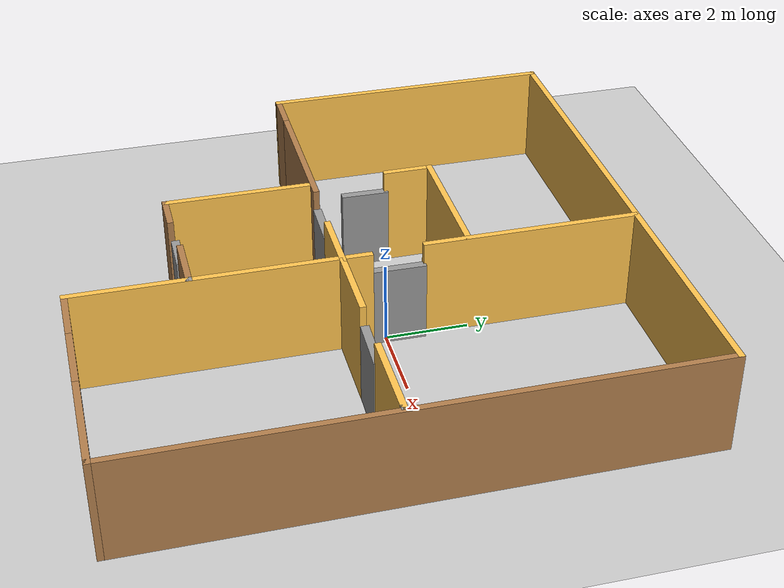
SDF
<sdf version="1.6">
 <world name="default">
  <model name="ground_plane">
   <static>1</static>
   <link name="link">
    <collision name="collision">
     <geometry><plane><normal>0 0 1</normal><size>100 100</size></plane></geometry>
     <surface><friction><ode><mu>100</mu><mu2>50</mu2></ode></friction></surface>
    </collision>
    <visual name="visual">
     <cast_shadows>0</cast_shadows>
     <geometry><plane><normal>0 0 1</normal><size>100 100</size></plane></geometry>
     <material>
      <script><uri>file://media/materials/scripts/gazebo.material</uri><name>Gazebo/Grey</name></script>
     </material>
    </visual>
   </link>
  </model>
  <model name="building_3">
   <pose>-0.985003 -0.565 0 0 -0 0</pose>
   <link name="Door_0">
    <collision name="Door_0_Collision">
     <geometry><box><size>1.01999 0.2 2</size></box></geometry>
     <pose>0 0 1 0 -0 0</pose>
    </collision>
    <visual name="Door_0_Visual">
     <pose>0 0 1 0 -0 0</pose>
     <geometry><box><size>1.01999 0.2 2</size></box></geometry>
     <material>
      <script><uri>file://media/materials/scripts/gazebo.material</uri><name>Gazebo/Grey</name></script>
     </material>
    </visual>
    <pose>-0.850007 -3.95563 0 0 -0 3.13184</pose>
   </link>
   <link name="Door_1">
    <collision name="Door_1_Collision">
     <geometry><box><size>1.39 0.2 2</size></box></geometry>
     <pose>0 0 1 0 -0 0</pose>
    </collision>
    <visual name="Door_1_Visual">
     <pose>0 0 1 0 -0 0</pose>
     <geometry><box><size>1.39 0.2 2</size></box></geometry>
     <material>
      <script><uri>file://media/materials/scripts/gazebo.material</uri><name>Gazebo/Grey</name></script>
     </material>
    </visual>
    <pose>-1.205 -0.425 0 0 -0 3.1235</pose>
   </link>
   <link name="Door_2">
    <collision name="Door_2_Collision">
     <geometry><box><size>1.38 0.2 2</size></box></geometry>
     <pose>0 0 1 0 -0 0</pose>
    </collision>
    <visual name="Door_2_Visual">
     <pose>0 0 1 0 -0 0</pose>
     <geometry><box><size>1.38 0.2 2</size></box></geometry>
     <material>
      <script><uri>file://media/materials/scripts/gazebo.material</uri><name>Gazebo/Grey</name></script>
     </material>
    </visual>
    <pose>3.77 -0.455 0 0 -0 3.11312</pose>
   </link>
   <link name="Door_3">
    <collision name="Door_3_Collision">
     <geometry><box><size>1.16729 0.2 2</size></box></geometry>
     <pose>0 0 1 0 -0 0</pose>
    </collision>
    <visual name="Door_3_Visual">
     <pose>0 0 1 0 -0 0</pose>
     <geometry><box><size>1.16729 0.2 2</size></box></geometry>
     <material>
      <script><uri>file://media/materials/scripts/gazebo.material</uri><name>Gazebo/Grey</name></script>
     </material>
    </visual>
    <pose>-2.36647 0.886271 0 0 0 -1.5891</pose>
   </link>
   <link name="Door_4">
    <collision name="Door_4_Collision">
     <geometry><box><size>1.29984 0.2 2</size></box></geometry>
     <pose>0 0 1 0 -0 0</pose>
    </collision>
    <visual name="Door_4_Visual">
     <pose>0 0 1 0 -0 0</pose>
     <geometry><box><size>1.29984 0.2 2</size></box></geometry>
     <material>
      <script><uri>file://media/materials/scripts/gazebo.material</uri><name>Gazebo/Grey</name></script>
     </material>
    </visual>
    <pose>1.04519 0.860446 0 0 -0 1.55838</pose>
   </link>
   <link name="Wall_0">
    <collision name="Wall_0_Collision">
     <geometry><box><size>13.5 0.15 2.5</size></box></geometry>
     <pose>0 0 1.25 0 -0 0</pose>
    </collision>
    <visual name="Wall_0_Visual">
     <pose>0 0 1.25 0 -0 0</pose>
     <geometry><box><size>13.5 0.15 2.5</size></box></geometry>
     <material>
      <script><uri>file://media/materials/scripts/gazebo.material</uri><name>Gazebo/Grey</name></script>
      <ambient>1 0.764706 0.305882 1</ambient>
     </material>
     <meta><layer>0</layer></meta>
    </visual>
    <pose>0 6.675 0 0 -0 0</pose>
   </link>
   <link name="Wall_1">
    <collision name="Wall_1_Collision">
     <geometry><box><size>13.5 0.15 2.5</size></box></geometry>
     <pose>0 0 1.25 0 -0 0</pose>
    </collision>
    <visual name="Wall_1_Visual">
     <pose>0 0 1.25 0 -0 0</pose>
     <geometry><box><size>13.5 0.15 2.5</size></box></geometry>
     <material>
      <script><uri>file://media/materials/scripts/gazebo.material</uri><name>Gazebo/Wood</name></script>
      <ambient>1 1 1 1</ambient>
     </material>
     <meta><layer>0</layer></meta>
    </visual>
    <pose>6.675 0 0 0 0 -1.5708</pose>
   </link>
   <link name="Wall_10">
    <collision name="Wall_10_Collision">
     <geometry><box><size>3.75 0.15 2.5</size></box></geometry>
     <pose>0 0 1.25 0 -0 0</pose>
    </collision>
    <visual name="Wall_10_Visual">
     <pose>0 0 1.25 0 -0 0</pose>
     <geometry><box><size>3.75 0.15 2.5</size></box></geometry>
     <material>
      <script><uri>file://media/materials/scripts/gazebo.material</uri><name>Gazebo/Wood</name></script>
      <ambient>1 1 1 1</ambient>
     </material>
     <meta><layer>0</layer></meta>
    </visual>
    <pose>-3.775 -0.425 0 0 -0 0</pose>
   </link>
   <link name="Wall_12">
    <collision name="Wall_12_Collision">
     <geometry><box><size>1.75 0.15 2.5</size></box></geometry>
     <pose>0 0 1.25 0 -0 0</pose>
    </collision>
    <visual name="Wall_12_Visual">
     <pose>0 0 1.25 0 -0 0</pose>
     <geometry><box><size>1.75 0.15 2.5</size></box></geometry>
     <material>
      <script><uri>file://media/materials/scripts/gazebo.material</uri><name>Gazebo/Grey</name></script>
      <ambient>1 0.764706 0.305882 1</ambient>
     </material>
     <meta><layer>0</layer></meta>
    </visual>
    <pose>0.355 -0.465 0 0 -0 0</pose>
   </link>
   <link name="Wall_14">
    <collision name="Wall_14_Collision">
     <geometry><box><size>3.75 0.15 2.5</size></box></geometry>
     <pose>0 0 1.25 0 -0 0</pose>
    </collision>
    <visual name="Wall_14_Visual">
     <pose>0 0 1.25 0 -0 0</pose>
     <geometry><box><size>3.75 0.15 2.5</size></box></geometry>
     <material>
      <script><uri>file://media/materials/scripts/gazebo.material</uri><name>Gazebo/Grey</name></script>
      <ambient>1 0.764706 0.305882 1</ambient>
     </material>
     <meta><layer>0</layer></meta>
    </visual>
    <pose>-2.295 -2.225 0 0 0 -1.5708</pose>
   </link>
   <link name="Wall_15">
    <collision name="Wall_15_Collision">
     <geometry><box><size>1 0.15 2.5</size></box></geometry>
     <pose>0 0 1.25 0 -0 0</pose>
    </collision>
    <visual name="Wall_15_Visual">
     <pose>0 0 1.25 0 -0 0</pose>
     <geometry><box><size>1 0.15 2.5</size></box></geometry>
     <material>
      <script><uri>file://media/materials/scripts/gazebo.material</uri><name>Gazebo/Wood</name></script>
      <ambient>1 1 1 1</ambient>
     </material>
     <meta><layer>0</layer></meta>
    </visual>
    <pose>-1.87 -4.025 0 0 -0 0</pose>
   </link>
   <link name="Wall_17">
    <collision name="Wall_17_Collision">
     <geometry><box><size>1.5 0.15 2.5</size></box></geometry>
     <pose>0 0 1.25 0 -0 0</pose>
    </collision>
    <visual name="Wall_17_Visual">
     <pose>0 0 1.25 0 -0 0</pose>
     <geometry><box><size>1.5 0.15 2.5</size></box></geometry>
     <material>
      <script><uri>file://media/materials/scripts/gazebo.material</uri><name>Gazebo/Wood</name></script>
      <ambient>1 1 1 1</ambient>
     </material>
     <meta><layer>0</layer></meta>
    </visual>
    <pose>0.39 -3.945 0 0 -0 0</pose>
   </link>
   <link name="Wall_18">
    <collision name="Wall_18_Collision">
     <geometry><box><size>0.16 0.15 2.5</size></box></geometry>
     <pose>0 0 1.25 0 -0 0</pose>
    </collision>
    <visual name="Wall_18_Visual">
     <pose>0 0 1.25 0 -0 0</pose>
     <geometry><box><size>0.16 0.15 2.5</size></box></geometry>
     <material>
      <script><uri>file://media/materials/scripts/gazebo.material</uri><name>Gazebo/Grey</name></script>
      <ambient>1 1 1 1</ambient>
     </material>
     <meta><layer>0</layer></meta>
    </visual>
    <pose>1.07 -3.945 0 0 -0 0</pose>
   </link>
   <link name="Wall_2">
    <pose>3.875 -6.675 0 0 -0 3.14159</pose>
    <visual name="Wall_2_Visual_0">
     <pose>-1.5725 0 1.25 0 -0 0</pose>
     <geometry><box><size>2.605 0.15 2.5</size></box></geometry>
     <material>
      <script><uri>file://media/materials/scripts/gazebo.material</uri><name>Gazebo/Wood</name></script>
      <ambient>1 1 1 1</ambient>
     </material>
     <meta><layer>0</layer></meta>
    </visual>
    <collision name="Wall_2_Collision_0">
     <geometry><box><size>2.605 0.15 2.5</size></box></geometry>
     <pose>-1.5725 0 1.25 0 -0 0</pose>
    </collision>
    <visual name="Wall_2_Visual_1">
     <pose>1.3025 0 0.25 0 -0 0</pose>
     <geometry><box><size>3.145 0.15 0.5</size></box></geometry>
     <material>
      <script><uri>file://media/materials/scripts/gazebo.material</uri><name>Gazebo/Wood</name></script>
      <ambient>1 1 1 1</ambient>
     </material>
     <meta><layer>0</layer></meta>
    </visual>
    <collision name="Wall_2_Collision_1">
     <geometry><box><size>3.145 0.15 0.5</size></box></geometry>
     <pose>1.3025 0 0.25 0 -0 0</pose>
    </collision>
    <visual name="Wall_2_Visual_2">
     <pose>2.1475 0 1.5 0 -0 0</pose>
     <geometry><box><size>1.455 0.15 2</size></box></geometry>
     <material>
      <script><uri>file://media/materials/scripts/gazebo.material</uri><name>Gazebo/Wood</name></script>
      <ambient>1 1 1 1</ambient>
     </material>
     <meta><layer>0</layer></meta>
    </visual>
    <collision name="Wall_2_Collision_2">
     <geometry><box><size>1.455 0.15 2</size></box></geometry>
     <pose>2.1475 0 1.5 0 -0 0</pose>
    </collision>
    <visual name="Wall_2_Visual_3">
     <pose>0.575 0 1.9 0 -0 0</pose>
     <geometry><box><size>1.69 0.15 1.2</size></box></geometry>
     <material>
      <script><uri>file://media/materials/scripts/gazebo.material</uri><name>Gazebo/Wood</name></script>
      <ambient>1 1 1 1</ambient>
     </material>
     <meta><layer>0</layer></meta>
    </visual>
    <collision name="Wall_2_Collision_3">
     <geometry><box><size>1.69 0.15 1.2</size></box></geometry>
     <pose>0.575 0 1.9 0 -0 0</pose>
    </collision>
   </link>
   <link name="Wall_20">
    <collision name="Wall_20_Collision">
     <geometry><box><size>2 0.15 2.5</size></box></geometry>
     <pose>0 0 1.25 0 -0 0</pose>
    </collision>
    <visual name="Wall_20_Visual">
     <pose>0 0 1.25 0 -0 0</pose>
     <geometry><box><size>2 0.15 2.5</size></box></geometry>
     <material>
      <script><uri>file://media/materials/scripts/gazebo.material</uri><name>Gazebo/Grey</name></script>
      <ambient>1 0.764706 0.305882 1</ambient>
     </material>
     <meta><layer>0</layer></meta>
    </visual>
    <pose>2.08 -0.465 0 0 -0 0</pose>
   </link>
   <link name="Wall_22">
    <collision name="Wall_22_Collision">
     <geometry><box><size>2.25 0.15 2.5</size></box></geometry>
     <pose>0 0 1.25 0 -0 0</pose>
    </collision>
    <visual name="Wall_22_Visual">
     <pose>0 0 1.25 0 -0 0</pose>
     <geometry><box><size>2.25 0.15 2.5</size></box></geometry>
     <material>
      <script><uri>file://media/materials/scripts/gazebo.material</uri><name>Gazebo/Grey</name></script>
      <ambient>1 0.764706 0.305882 1</ambient>
     </material>
     <meta><layer>0</layer></meta>
    </visual>
    <pose>5.535 -0.475 0 0 -0 0</pose>
   </link>
   <link name="Wall_23">
    <collision name="Wall_23_Collision">
     <geometry><box><size>0.16 0.15 2.5</size></box></geometry>
     <pose>0 0 1.25 0 -0 0</pose>
    </collision>
    <visual name="Wall_23_Visual">
     <pose>0 0 1.25 0 -0 0</pose>
     <geometry><box><size>0.16 0.15 2.5</size></box></geometry>
     <material>
      <script><uri>file://media/materials/scripts/gazebo.material</uri><name>Gazebo/Grey</name></script>
      <ambient>1 1 1 1</ambient>
     </material>
     <meta><layer>0</layer></meta>
    </visual>
    <pose>6.59 -0.475 0 0 -0 0</pose>
   </link>
   <link name="Wall_25">
    <collision name="Wall_25_Collision">
     <geometry><box><size>3.5 0.15 2.5</size></box></geometry>
     <pose>0 0 1.25 0 -0 0</pose>
    </collision>
    <visual name="Wall_25_Visual">
     <pose>0 0 1.25 0 -0 0</pose>
     <geometry><box><size>3.5 0.15 2.5</size></box></geometry>
     <material>
      <script><uri>file://media/materials/scripts/gazebo.material</uri><name>Gazebo/Grey</name></script>
      <ambient>1 0.764706 0.305882 1</ambient>
     </material>
     <meta><layer>0</layer></meta>
    </visual>
    <pose>-0.72 2.545 0 0 -0 0</pose>
   </link>
   <link name="Wall_27">
    <collision name="Wall_27_Collision">
     <geometry><box><size>1.25 0.15 2.5</size></box></geometry>
     <pose>0 0 1.25 0 -0 0</pose>
    </collision>
    <visual name="Wall_27_Visual">
     <pose>0 0 1.25 0 -0 0</pose>
     <geometry><box><size>1.25 0.15 2.5</size></box></geometry>
     <material>
      <script><uri>file://media/materials/scripts/gazebo.material</uri><name>Gazebo/Grey</name></script>
      <ambient>1 0.764706 0.305882 1</ambient>
     </material>
     <meta><layer>0</layer></meta>
    </visual>
    <pose>-2.395 1.995 0 0 0 -1.5708</pose>
   </link>
   <link name="Wall_3">
    <collision name="Wall_3_Collision">
     <geometry><box><size>7 0.15 2.5</size></box></geometry>
     <pose>0 0 1.25 0 -0 0</pose>
    </collision>
    <visual name="Wall_3_Visual">
     <pose>0 0 1.25 0 -0 0</pose>
     <geometry><box><size>7 0.15 2.5</size></box></geometry>
     <material>
      <script><uri>file://media/materials/scripts/gazebo.material</uri><name>Gazebo/Grey</name></script>
      <ambient>1 0.764706 0.305882 1</ambient>
     </material>
     <meta><layer>0</layer></meta>
    </visual>
    <pose>1.075 -3.25 0 0 -0 1.5708</pose>
   </link>
   <link name="Wall_5">
    <collision name="Wall_5_Collision">
     <geometry><box><size>5.25 0.15 2.5</size></box></geometry>
     <pose>0 0 1.25 0 -0 0</pose>
    </collision>
    <visual name="Wall_5_Visual">
     <pose>0 0 1.25 0 -0 0</pose>
     <geometry><box><size>5.25 0.15 2.5</size></box></geometry>
     <material>
      <script><uri>file://media/materials/scripts/gazebo.material</uri><name>Gazebo/Grey</name></script>
      <ambient>1 0.764706 0.305882 1</ambient>
     </material>
     <meta><layer>0</layer></meta>
    </visual>
    <pose>0.975 4.085 0 0 0 -1.5708</pose>
   </link>
   <link name="Wall_7">
    <collision name="Wall_7_Collision">
     <geometry><box><size>7.25 0.15 2.5</size></box></geometry>
     <pose>0 0 1.25 0 -0 0</pose>
    </collision>
    <visual name="Wall_7_Visual">
     <pose>0 0 1.25 0 -0 0</pose>
     <geometry><box><size>7.25 0.15 2.5</size></box></geometry>
     <material>
      <script><uri>file://media/materials/scripts/gazebo.material</uri><name>Gazebo/Grey</name></script>
      <ambient>1 0.764706 0.305882 1</ambient>
     </material>
     <meta><layer>0</layer></meta>
    </visual>
    <pose>-6.675 3.125 0 0 0 -1.5708</pose>
   </link>
   <link name="Wall_8">
    <collision name="Wall_8_Collision">
     <geometry><box><size>1.25 0.15 2.5</size></box></geometry>
     <pose>0 0 1.25 0 -0 0</pose>
    </collision>
    <visual name="Wall_8_Visual">
     <pose>0 0 1.25 0 -0 0</pose>
     <geometry><box><size>1.25 0.15 2.5</size></box></geometry>
     <material>
      <script><uri>file://media/materials/scripts/gazebo.material</uri><name>Gazebo/Wood</name></script>
      <ambient>1 1 1 1</ambient>
     </material>
     <meta><layer>0</layer></meta>
    </visual>
    <pose>-6.125 -0.425 0 0 -0 0</pose>
   </link>
   <static>1</static>
  </model>
  <model name="my_ball">
   <link name="link_0">
    <inertial>
     <mass>1.04934</mass>
     <inertia>
      <ixx>0.00433435</ixx>
      <ixy>0</ixy>
      <ixz>0</ixz>
      <iyy>0.00433435</iyy>
      <iyz>0</iyz>
      <izz>0.00433435</izz>
     </inertia>
    </inertial>
    <visual name="visual">
     <geometry><sphere><radius>0.1</radius></sphere></geometry>
     <material>
      <lighting>1</lighting>
      <script><uri>file://media/materials/scripts/gazebo.material</uri><name>Gazebo/Grey</name></script>
      <shader type="pixel"><normal_map>__default__</normal_map></shader>
      <ambient>1 1 1 1</ambient>
      <diffuse>1 1 1 1</diffuse>
      <specular>1 1 1 1</specular>
      <emissive>1 1 1 1</emissive>
     </material>
    </visual>
    <collision name="collision">
     <geometry><sphere><radius>0.1</radius></sphere></geometry>
     <surface>
      <friction>
       <ode><mu>1</mu><mu2>1</mu2><fdir1>0 0 0</fdir1><slip1>0</slip1><slip2>0</slip2></ode>
       <torsional>
        <coefficient>1</coefficient>
        <patch_radius>0</patch_radius>
        <surface_radius>0</surface_radius>
        <use_patch_radius>1</use_patch_radius>
        <ode><slip>0</slip></ode>
       </torsional>
      </friction>
      <bounce><restitution_coefficient>0</restitution_coefficient><threshold>1e+06</threshold></bounce>
      <contact>
       <collide_without_contact>0</collide_without_contact>
       <collide_without_contact_bitmask>1</collide_without_contact_bitmask>
       <collide_bitmask>1</collide_bitmask>
       <ode>
        <soft_cfm>0</soft_cfm>
        <soft_erp>0.2</soft_erp>
        <kp>1e+13</kp>
        <kd>1</kd>
        <max_vel>0.01</max_vel>
        <min_depth>0</min_depth>
       </ode>
       <bullet>
        <split_impulse>1</split_impulse>
        <split_impulse_penetration_threshold>-0.01</split_impulse_penetration_threshold>
        <soft_cfm>0</soft_cfm>
        <soft_erp>0.2</soft_erp>
        <kp>1e+13</kp>
        <kd>1</kd>
       </bullet>
      </contact>
     </surface>
    </collision>
   </link>
   <static>0</static>
   <pose>-2.93833 7.49986 0.1 0 -0 0</pose>
  </model>
 </world>
</sdf>
